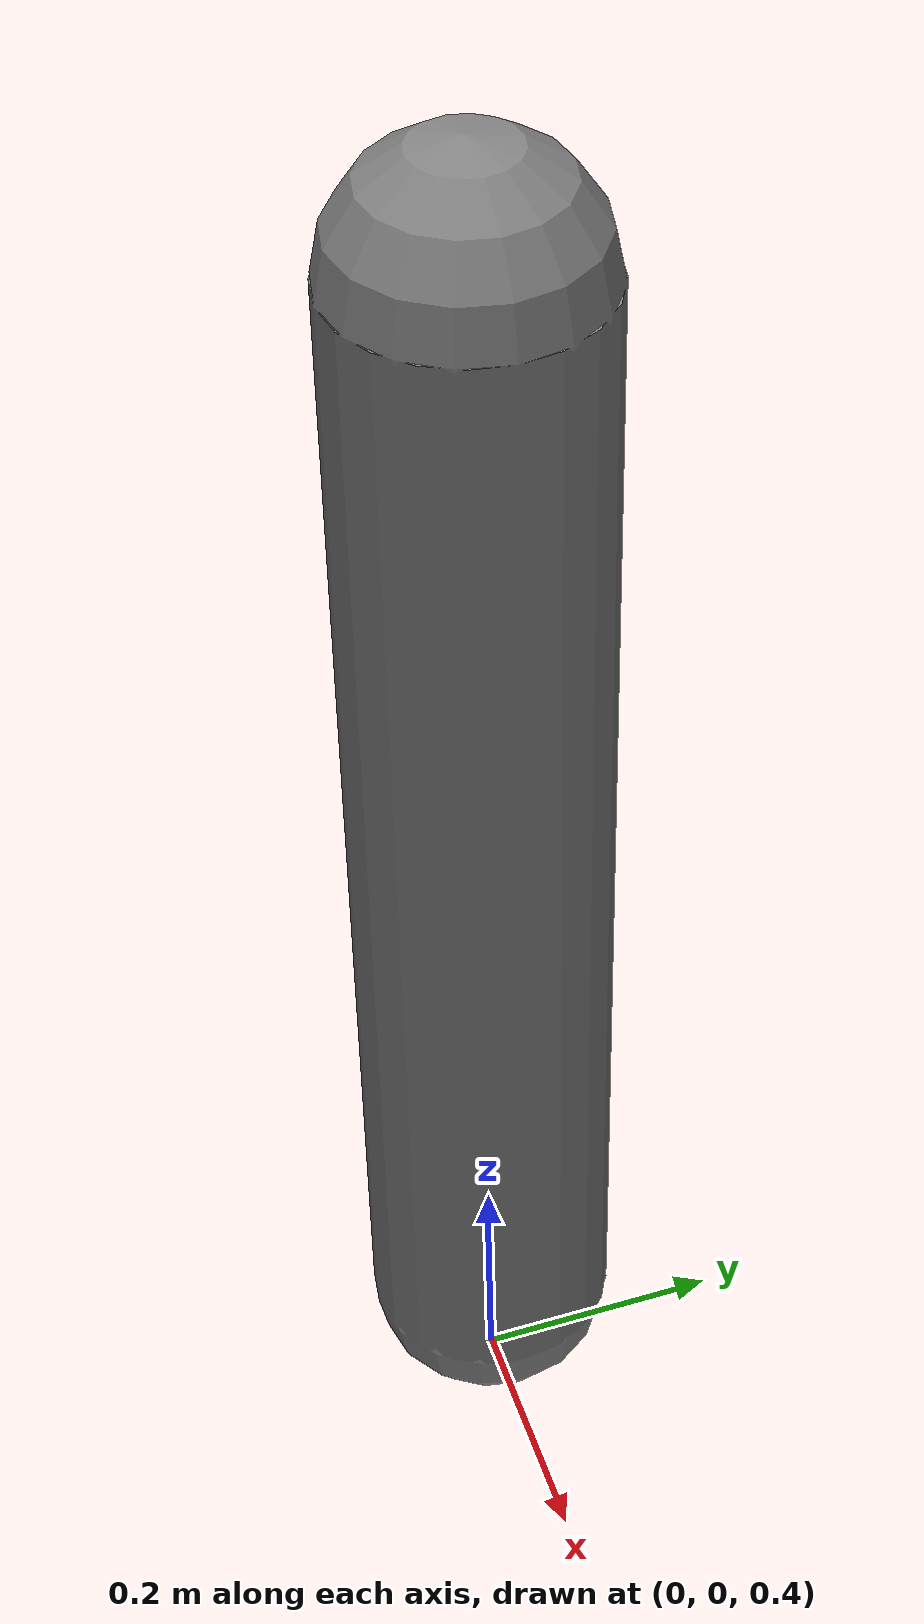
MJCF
<mujoco>
  <asset>
     <texture name="tex" type="2d" builtin="checker" width="512" height="512" rgb1=".1 .2 .3" rgb2=".8 .9 .9"/>
  </asset>
  <worldbody>
    <body name="robot_base" pos="0 0 1">
       <geom type="capsule" size="0.1 0.5"/>
       <joint name="j1" type="hinge"/>
    </body>
  </worldbody>
</mujoco>
